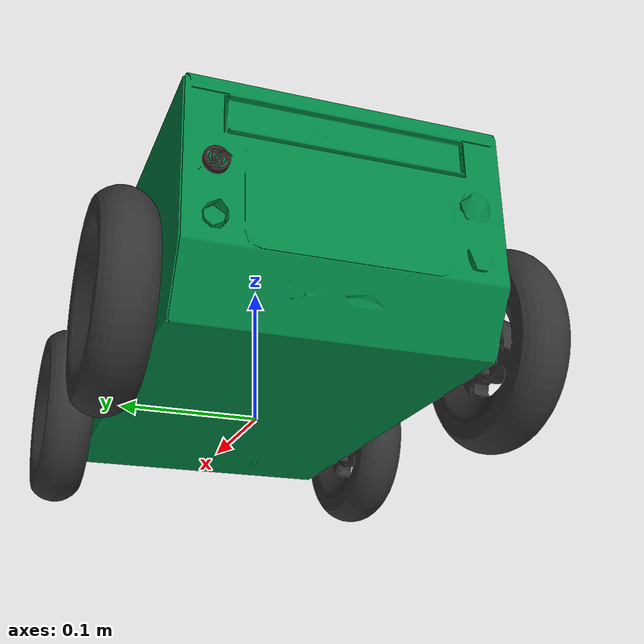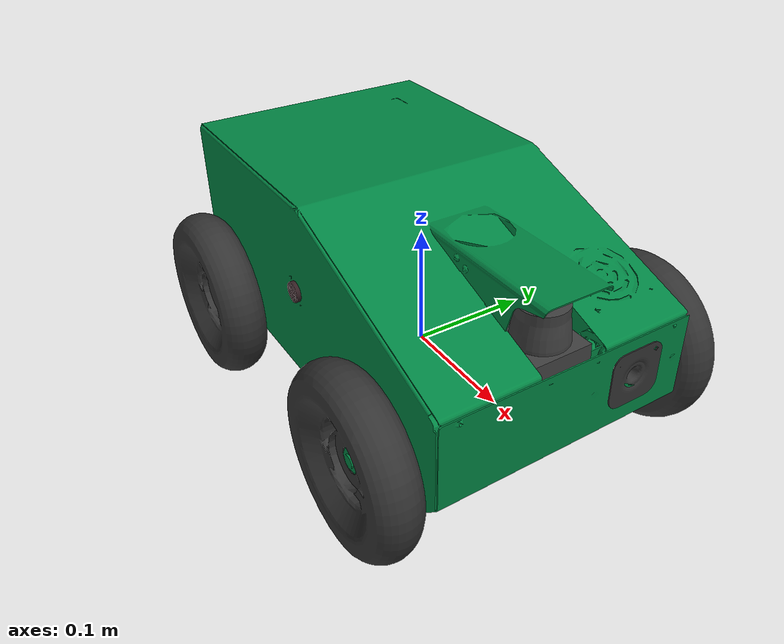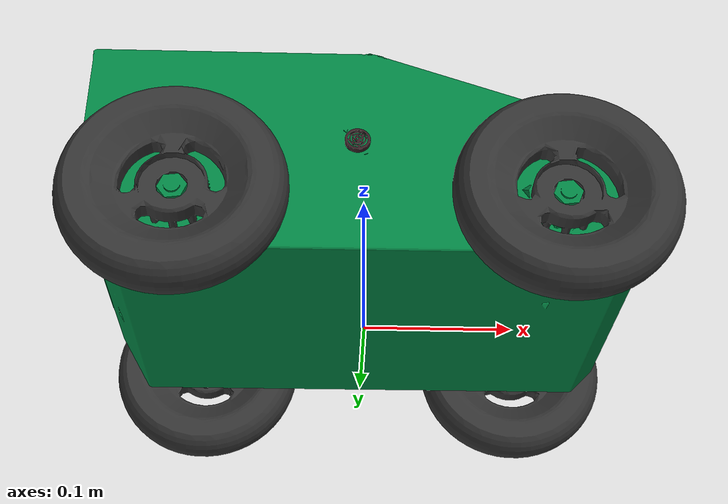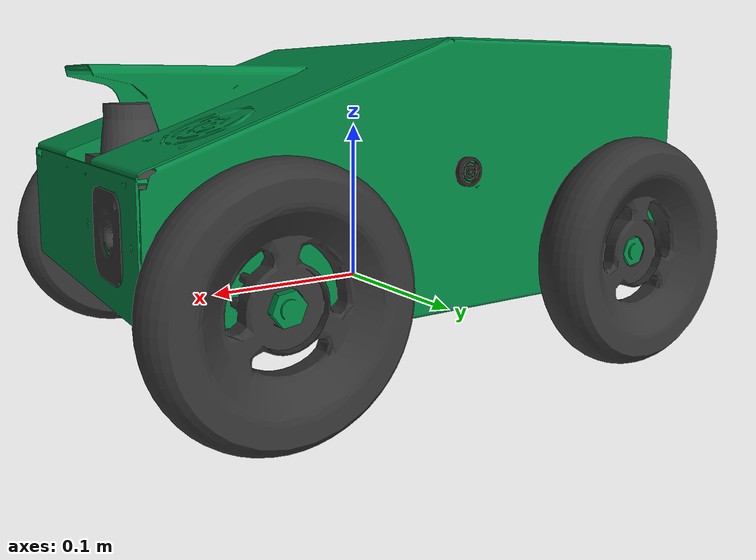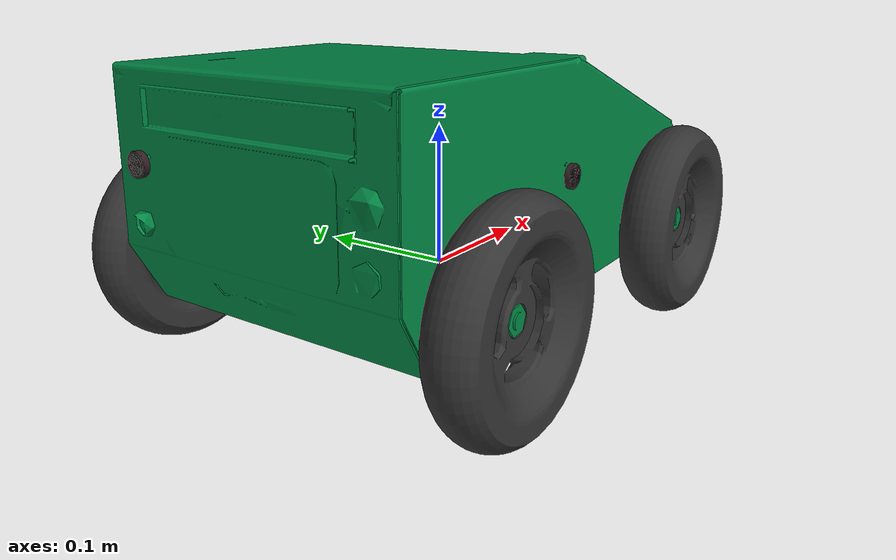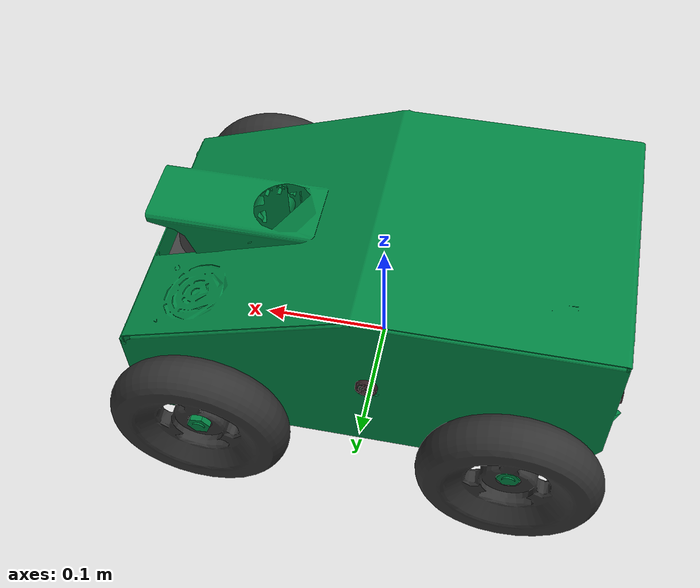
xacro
<?xml version="1.0"?>
<robot xmlns:xacro="http://www.ros.org/wiki/xacro" name="lizi">

	<xacro:property name="M_PI" value="3.1415926535897931" />
	<xacro:property name="lizi_color" value="0 0.517 0.26 1" />
	<xacro:arg name="pan_tilt" default="false"/>

	<!-- Load all the links  -->
	<link name="base_link">
			<inertial>
				<origin rpy="0 0 0" xyz="-0.036889 0.00027038 0.069426" />
				<mass value="4.706" />
				<inertia ixx="0.032024" ixy="0.00038846" ixz="-0.0046108" iyy="0.065583" iyz="2.8552E-06" izz="0.076391" />
			</inertial>
			<visual>
				<origin rpy="0 0 0" xyz="0 0 0" />
				<geometry>
					<mesh filename="package://robotican_lizi/description/meshes/base_link.STL" />
				</geometry>
				<material name="">
					<color rgba="${lizi_color}" />
				</material>
			</visual>
			<collision>
				<origin rpy="0 0 0" xyz="0 0 0" />
				<geometry>
					<mesh filename="package://robotican_lizi/description/meshes/base_link.STL" />
				</geometry>
			</collision>
	</link>

	<link name="fl_wheel_link">
			<inertial>
				<origin rpy="0 0 0" xyz="2.9411E-11 -0.0075967 5.8231E-11" />
				<mass value="0.4084" />
				<inertia ixx="0.00059356" ixy="3.4979E-14" ixz="-4.6514E-14" iyy="0.0011268" iyz="5.6928E-14" izz="0.00059356" />
			</inertial>
			<visual>
				<origin rpy="0 0 0" xyz="0 0 0" />
				<geometry>
					<mesh filename="package://robotican_lizi/description/meshes/fl_wheel_link.STL" />

				</geometry>
				<material name="">
					<color rgba="0.2 0.2 0.2 1" />
				</material>
			</visual>
			<collision>
				<origin rpy="${M_PI/2} 0 0" xyz="0 0 0" />
				<geometry>
				  <cylinder  length="0.02" radius="0.065"/>
				</geometry>
			</collision>
	</link>

	<link name="fr_wheel_link">
			<inertial>
				<origin rpy="0 0 0" xyz="-2.9052E-11 0.0035967 5.8411E-11" />
				<mass value="0.4084" />
				<inertia ixx="0.00059356" ixy="3.4627E-14" ixz="4.9977E-14" iyy="0.0011268" iyz="-5.7142E-14" izz="0.00059356" />
			</inertial>
			<visual>
				<origin rpy="0 0 0" xyz="0 0 0" />
				<geometry>
					<mesh filename="package://robotican_lizi/description/meshes/fr_wheel_link.STL" />
				</geometry>
				<material name="">
					<color rgba="0.2 0.2 0.2 1" />
				</material>
			</visual>
			<collision>
				<origin rpy="${M_PI/2} 0 0" xyz="0 0 0" />
				<geometry>
				  <cylinder  length="0.02" radius="0.065"/>
				</geometry>
			</collision>
	</link>

	<link name="rl_wheel_link">
			<inertial>
				<origin rpy="0 0 0" xyz="2.9411E-11 -0.0035967 5.8231E-11" />
				<mass value="0.4084" />
				<inertia ixx="0.00059356" ixy="3.4979E-14" ixz="-4.6514E-14" iyy="0.0011268" iyz="5.6928E-14" izz="0.00059356" />
			</inertial>
			<visual>
				<origin rpy="0 0 0" xyz="0 0 0" />
				<geometry>
					<mesh filename="package://robotican_lizi/description/meshes/rl_wheel_link.STL" />
				</geometry>
				<material name="">
					<color rgba="0.2 0.2 0.2 1" />
				</material>
			</visual>
			<collision>
				<origin rpy="${M_PI/2} 0 0" xyz="0 0 0" />
				<geometry>
				  <cylinder  length="0.02" radius="0.065"/>
				</geometry>
			</collision>
	</link>

	<link name="rr_wheel_link">
		<inertial>
			<origin rpy="0 0 0" xyz="-2.9411E-11 0.0035967 5.8231E-11" />
			<mass value="0.4084" />
			<inertia ixx="0.00059356" ixy="3.4979E-14" ixz="4.6514E-14" iyy="0.0011268" iyz="-5.6928E-14" izz="0.00059356" />
		</inertial>
		<visual>
			<origin rpy="0 0 0" xyz="0 0 0" />
			<geometry>
				<mesh filename="package://robotican_lizi/description/meshes/rr_wheel_link.STL" />
			</geometry>
			<material name="">
				<color rgba="0.2 0.2 0.2 1" />
			</material>
		</visual>
		<collision>
			<origin rpy="${M_PI/2} 0 0" xyz="0 0 0" />
			<geometry>
			  <cylinder  length="0.02" radius="0.065"/>
			</geometry>
		</collision>
  	</link>

	<link name="right_urf_link">
		<inertial>
			<origin rpy="0 0 0" xyz="1.6494E-05 0.012085 -1.486E-07" />
			<mass value="0.0020317" />
			<inertia ixx="8.4324E-08" ixy="1.1443E-10" ixz="1.6171E-09" iyy="9.8652E-08" iyz="-1.0309E-12" izz="7.8496E-08" />
		</inertial>
		<visual>
			<origin rpy="0 0 1.57" xyz="0 0 0" />
			<geometry>
				<mesh filename="package://robotican_lizi/description/meshes/right_urf_link.STL" />
			</geometry>
			<material name="">
				<color rgba="0.19216 0.11961 0.13333 1" />
			</material>
		</visual>
		<collision>
			<origin rpy="0 0 0" xyz="0 0 0" />
			<geometry>
				<mesh filename="package://robotican_lizi/description/meshes/right_urf_link.STL" />
			</geometry>
		</collision>
	</link>

	<link name="rear_urf_link">
		<inertial>
			<origin rpy="0 0 0" xyz="0.012085 -1.486E-07 1.6494E-05" />
			<mass value="0.0020317" />
			<inertia ixx="9.8652E-08" ixy="-1.0309E-12" ixz="1.1443E-10" iyy="7.8496E-08" iyz="1.6171E-09" izz="8.4324E-08" />
		</inertial>
		<visual>
			<origin rpy="0 0 ${M_PI}" xyz="0 0 0" />
			<geometry>
				<mesh filename="package://robotican_lizi/description/meshes/rear_urf_link.STL" />
			</geometry>
			<material name="">
				<color rgba="0.19216 0.11961 0.13333 1" />
			</material>
		</visual>
		<collision>
			<origin rpy="0 0 ${M_PI}" xyz="0 0 0" />
			<geometry>
				<mesh filename="package://robotican_lizi/description/meshes/rear_urf_link.STL" />
			</geometry>
		</collision>
	</link>

	<link name="left_urf_link">
		<inertial>
			<origin rpy="0 0 0" xyz="1.6494E-05 -0.012085 1.486E-07" />
			<mass value="0.0020317" />
			<inertia ixx="8.4324E-08" ixy="-1.1443E-10" ixz="-1.6171E-09" iyy="9.8652E-08" iyz="-1.0309E-12" izz="7.8496E-08" />
		</inertial>
		<visual>
			<origin rpy="0 0 -1.57" xyz="0 0 0" />
			<geometry>
				<mesh filename="package://robotican_lizi/description/meshes/left_urf_link.STL" />
			</geometry>
			<material name="">
				<color rgba="0.19216 0.11961 0.13333 1" />
			</material>
		</visual>
		<collision>
			<origin rpy="0 0 0" xyz="0 0 0" />
			<geometry>
				<mesh filename="package://robotican_lizi/description/meshes/left_urf_link.STL" />
			</geometry>
		</collision>
	</link>

	<link name="laser_link">
		<inertial>
			<origin rpy="0 0 0" xyz="0.00079194 -0.00016941 -0.032844" />
			<mass value="0.13934" />
			<inertia ixx="7.4677E-05" ixy="-1.0667E-07" ixz="-9.0925E-07" iyy="7.7824E-05" iyz="5.076E-07" izz="5.1196E-05" />
		</inertial>
		<visual>
			<origin rpy="0 0 ${M_PI}" xyz="0 0 0" />
			<geometry>
				<mesh filename="package://robotican_lizi/description/meshes/laser_link.STL" />
			</geometry>
			<material name="">
				<color rgba="0.25294 0.25294 0.25294 1" />
			</material>
		</visual>
		<collision>
			<origin rpy="0 0 0" xyz="0 0 0" />
			<geometry>
				<mesh filename="package://robotican_lizi/description/meshes/laser_link.STL" />
			</geometry>
		</collision>
	</link>

	<link name="camera_link">
			<inertial>
				<origin rpy="0 0 0" xyz="-0.010925 -4.5428E-06 0.00024772" />
				<mass value="0.033156" />
				<inertia ixx="9.3903E-06" ixy="-1.4061E-09" ixz="5.0587E-08" iyy="5.845E-06" iyz="-2.4174E-09" izz="5.8692E-06" />
			</inertial>
			<visual>
				<origin rpy="0 0 0" xyz="0 0 0" />
				<geometry>
					<mesh filename="package://robotican_lizi/description/meshes/camera_link.STL" />
				</geometry>
				<material name="">
					<color rgba="0.2 0.2 0.2 1" />
				</material>
			</visual>
			<collision>
				<origin rpy="0 0 0" xyz="0 0 0" />
				<geometry>
					<mesh filename="package://robotican_lizi/description/meshes/camera_link.STL" />
				</geometry>
			</collision>
		</link>

	<xacro:if value="$(arg pan_tilt)">

		<link name="pan_link">
			<inertial>
				<origin rpy="0 0 0" xyz="-0.015533 -0.010751 0.019512" />
				<mass value="0.016162" />
				<inertia ixx="5.2781E-06" ixy="1.178E-06" ixz="1.1286E-06" iyy="6.0052E-06" iyz="7.9421E-07" izz="4.7257E-06" />
			</inertial>
			<visual>
				<origin rpy="0 0 0" xyz="0 0 0" />
				<geometry>
					<mesh filename="package://robotican_lizi/description/meshes/pan_link.STL" />
				</geometry>
				<material name="">
					<color rgba="0.2 0.2 0.2 1" />
				</material>
			</visual>
			<collision>
				<origin rpy="0 0 0" xyz="0 0 0" />
				<geometry>
					<mesh filename="package://robotican_lizi/description/meshes/pan_link.STL" />
				</geometry>
			</collision>
		</link>

		<link name="asus_camera_link">
			<inertial>
				<origin rpy="0 0 0" xyz="0 0 0" />
				<mass value="0.14689" />
				<inertia ixx="0.00037709" ixy="-2.2879E-08" ixz="1.0241E-05" iyy="0.00038351" iyz="1.2981E-08" izz="2.2432E-05" />
			</inertial>
			<visual>
				<origin rpy="${M_PI/2} 0 0" xyz="-0.007 0 0" />
				<geometry>
					<mesh filename="package://robotican_lizi/description/meshes/asus_camera_link.STL" />

				</geometry>
				<material name="">
					<color rgba="0.2 0.2 0.2 1" />
				</material>
			</visual>
			<collision>
				<origin rpy="${M_PI/2} 0 0" xyz="0 0 0" />
				<geometry>
					<mesh filename="package://robotican_lizi/description/meshes/asus_camera_link.STL" />
				</geometry>
			</collision>
		</link>

		  <joint name="asus_rgb_joint" type="fixed">
      <origin xyz="0 0.022 0" rpy="0 0 0"/>
      <parent link="asus_camera_link"/>
      <child link="asus_camera_rgb_frame" />
    </joint>

    <link name="asus_camera_rgb_frame">
      <inertial>
	<mass value="0.001" />
	<origin xyz="0 0 0" />
	<inertia ixx="0.0001" ixy="0.0" ixz="0.0"
	  iyy="0.0001" iyz="0.0"
	  izz="0.0001" />
	</inertial>
      </link>
      <joint name="asus_camera_rgb_optical_joint" type="fixed">
	<origin xyz="0 0 0" rpy="${-M_PI/2} 0 ${-M_PI/2}" />
	<parent link="asus_camera_rgb_frame" />
	<child link="asus_camera_rgb_optical_frame" />
      </joint>

      <link name="asus_camera_rgb_optical_frame">
	<inertial>
	  <mass value="0.001" />
	  <origin xyz="0 0 0" />
	  <inertia ixx="0.0001" ixy="0.0" ixz="0.0"
	    iyy="0.0001" iyz="0.0"
	    izz="0.0001" />
	  </inertial>
	</link>

	<joint name="asus_camera_depth_joint" type="fixed">
	  <origin xyz="0 0.049 0" rpy="0 0 0" />
	  <parent link="asus_camera_link" />
	  <child link="asus_camera_depth_frame" />
	</joint>

	<link name="asus_camera_depth_frame">
	  <inertial>
	    <mass value="0.001" />
	    <origin xyz="0 0 0" />
	    <inertia ixx="0.0001" ixy="0.0" ixz="0.0"
	      iyy="0.0001" iyz="0.0"
	      izz="0.0001" />
	    </inertial>
	  </link>

	  <joint name="asus_camera_depth_optical_joint" type="fixed">
	    <origin xyz="0 0 0" rpy="${-M_PI/2} 0 ${-M_PI/2}" />
	    <parent link="asus_camera_depth_frame" />
	    <child link="asus_camera_depth_optical_frame" />
	  </joint>
	  <link name="asus_camera_depth_optical_frame">
	    <inertial>
	      <mass value="0.001" />
	      <origin xyz="0 0 0" />
	      <inertia ixx="0.0001" ixy="0.0" ixz="0.0"
		iyy="0.0001" iyz="0.0"
		izz="0.0001" />
	      </inertial>
	    </link>

	</xacro:if>

	<!--         END         -->
	<!-- Load all the joints -->

	<joint name="fl_wheel_joint" type="continuous">
    		<origin xyz="0.118 0.1338 0.026" rpy="0 0 -1.3371E-16" />
    		<parent link="base_link" />
    		<child link="fl_wheel_link" />
    		<axis xyz="0 1 0" />
  	</joint>
	<joint name="rl_wheel_joint" type="continuous">
    		<origin xyz="-0.118 0.1338 0.026" rpy="0 0 -6.6853E-16" />
    		<parent link="base_link" />
    		<child link="rl_wheel_link" />
    		<axis xyz="0 1 0" />

  	</joint>
	<joint name="rr_wheel_joint" type="continuous">
    		<origin xyz="-0.118 -0.1338 0.026" rpy="-1.2938E-16 -1.2938E-15 -6.6853E-16" />
    		<parent link="base_link" />
    		<child link="rr_wheel_link" />
    		<axis xyz="0 1 0" />
  	</joint>
	<joint name="fr_wheel_joint" type="continuous">
    		<origin xyz="0.118 -0.1338 0.026" rpy="4.4216E-16 -0.0061583 -2.6824E-16" />
    		<parent link="base_link" />
    		<child link="fr_wheel_link" />
    		<axis xyz="0 1 0" />
  	</joint>

	<xacro:if value="$(arg pan_tilt)">
		<joint name="pan_joint" type="revolute">
				<origin xyz="0.081249 0 0.092091" rpy="2.1253E-16 8.5011E-16 0" />
				<parent link="base_link" />
				<child link="pan_link" />
				<axis xyz="0 0 1" />
				<limit upper="0.610865" lower="-0.610865" effort="1.11" velocity="5.3" />
		</joint>

		<joint name="tilt_joint" type="revolute">
				<origin xyz="-0.0004889 -0.00041349 0.08" rpy="0 0 0" />
				<parent link="pan_link" />
				<child link="asus_camera_link" />
				<axis xyz="0 1 0" />
				<limit upper="0.523599" lower="-0.523599" effort="1.11" velocity="5.3" />
		</joint>
	</xacro:if>

	<joint name="right_urf_joint" type="fixed">
    		<origin xyz="-0.0074577 -0.11 0.07895" rpy="0 0 ${-M_PI/2}" />
    		<parent link="base_link" />
    		<child link="right_urf_link" />
    		<axis xyz="0 0 0" />
  	</joint>

	<joint name="left_urf_joint" type="fixed">
    		<origin xyz="-0.0074577 0.11 0.07895" rpy="0 0 ${M_PI/2}" />
    		<parent link="base_link" />
    		<child link="left_urf_link" />
    		<axis xyz="0 0 0" />
  	</joint>

	<joint name="rear_urf_joint" type="fixed">
    		<origin xyz="-0.187 0.085 0.093934" rpy="0 0 ${M_PI}" />
    		<parent link="base_link" />
    		<child link="rear_urf_link" />
    		<axis xyz="0 0 0" />
  	</joint>

	<joint name="laser_joint" type="fixed">
    		<origin xyz="0.14276 -1.1564E-05 0.10781" rpy="2.1253E-16 8.5011E-16 -2.6741E-16" />
    		<parent link="base_link" />
    		<child link="laser_link" />
    		<axis xyz="0 0 0" />
  	</joint>

	<joint name="camera_joint" type="fixed">
    		<origin xyz="0.18 0.05775 0.054305" rpy="1.6519E-18 -0.0061583 -2.6824E-16" />
    		<parent link="base_link" />
    		<child link="camera_link" />
    		<axis xyz="0 0 0" />
  	</joint>

	<!--         END         -->
</robot>
